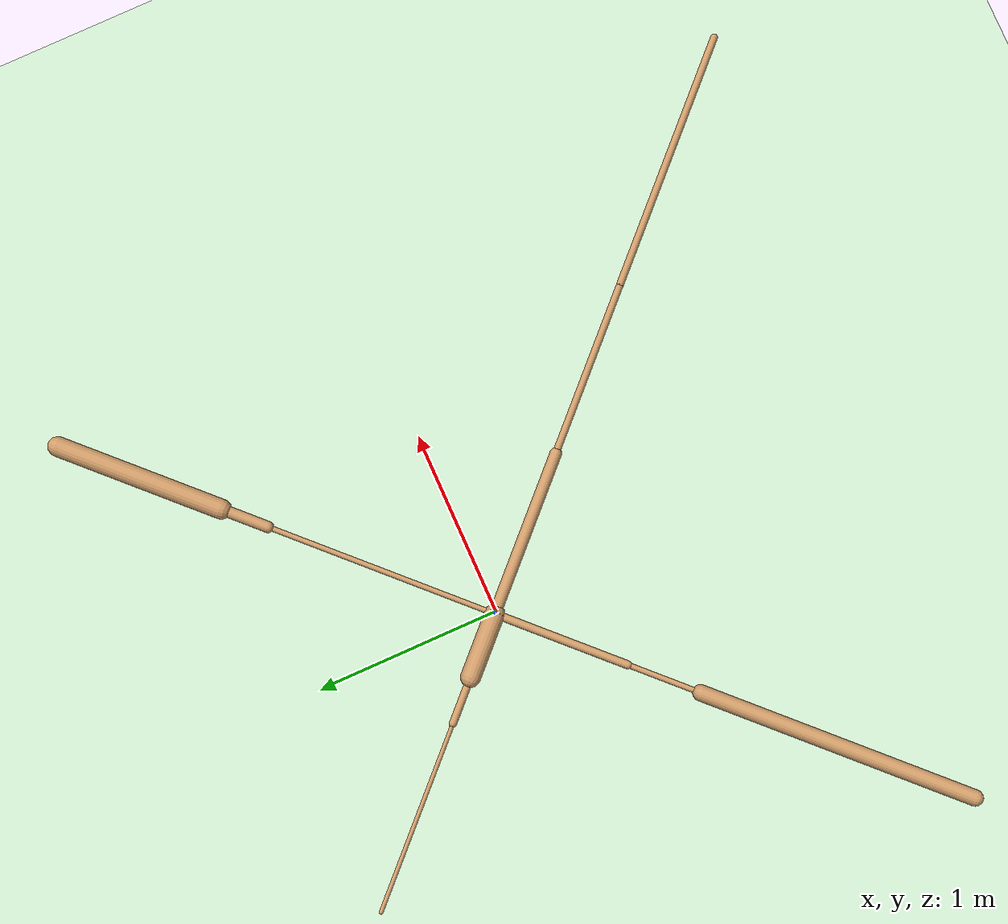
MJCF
<mujoco model="ant">
  <compiler angle="degree" coordinate="local" inertiafromgeom="true" />
  <option integrator="RK4" timestep="0.01" />
  <custom>
    <numeric data="0.0 0.0 0.55 1.0 0.0 0.0 0.0 0.0 1.0 0.0 -1.0 0.0 -1.0 0.0 1.0" name="init_qpos" />
  </custom>
  <default>
    <joint armature="1" damping="1" limited="true" />
    <geom conaffinity="0" condim="3" density="5.0" friction="1 0.5 0.5" margin="0.01" rgba="0.8 0.6 0.4 1" />
  </default>
  <asset>
    <texture builtin="gradient" height="100" rgb1="1 1 1" rgb2="0 0 0" type="skybox" width="100" />
    <texture builtin="flat" height="1278" mark="cross" markrgb="1 1 1" name="texgeom" random="0.01" rgb1="0.8 0.6 0.4" rgb2="0.8 0.6 0.4" type="cube" width="127" />
    <texture builtin="checker" height="100" name="texplane" rgb1="0 0 0" rgb2="0.8 0.8 0.8" type="2d" width="100" />
    <material name="MatPlane" reflectance="0.5" shininess="1" specular="1" texrepeat="60 60" texture="texplane" />
    <material name="geom" texture="texgeom" texuniform="true" />
  </asset>
  <worldbody>
    <light cutoff="100" diffuse="1 1 1" dir="-0 0 -1.3" directional="true" exponent="1" pos="0 0 1.3" specular=".1 .1 .1" />
    <geom conaffinity="1" condim="3" material="MatPlane" name="floor" pos="0 0 0" rgba="0.8 0.9 0.8 1" size="40 40 40" type="plane" />
    <body name="torso" pos="0 0 0.75">
      <camera name="track" mode="trackcom" pos="0 -11 5" xyaxes="1 0 0 0 0.5 1" />
      <geom name="torso_geom" pos="0 0 0" size="0.04806238412857056" type="sphere" />
      <joint armature="0" damping="0" limited="false" margin="0.01" name="root" pos="0 0 0" type="free" />
      <body name="front_left_leg" pos="0 0 0">
        <geom fromto="0 0 0 0.8224867582321167 0.8224867582321167 0" name="aux_1_geom" size="0.013106144964694977" type="capsule" />
        <body name="aux_1" pos="0.8224867582321167 0.8224867582321167 0">
          <joint axis="0 0 1" name="hip_1" pos="0.0 0.0 0.0" range="-30 30" type="hinge" />
          <geom fromto="0 0 0 0.16978150606155396 0.16978150606155396 0" name="left_leg_geom" size="0.02815042994916439" type="capsule" />
          <body name="left_leg_geom_aux" pos="0.16978150606155396 0.16978150606155396 0">
            <joint axis="-1 1 0" name="ankle_1" pos="0.0 0.0 0.0" range="30 70" type="hinge" />
            <geom fromto="0 0 0 0.5983090996742249 0.5983090996742249 0" name="left_ankle_geom" size="0.04953997954726219" type="capsule" />
          </body>
        </body>
      </body>
      <body name="front_right_leg" pos="0 0 0">
        <geom fromto="0 0 0 -0.22788172960281372 0.22788172960281372 0" name="aux_2_geom" size="0.049481336027383804" type="capsule" />
        <body name="aux_2" pos="-0.22788172960281372 0.22788172960281372 0">
          <joint axis="0 0 1" name="hip_2" pos="0.0 0.0 0.0" range="-30 30" type="hinge" />
          <geom fromto="0 0 0 -0.16476759314537048 0.16476759314537048 0" name="right_leg_geom" size="0.01893732324242592" type="capsule" />
          <body name="right_leg_geom_aux" pos="-0.16476759314537048 0.16476759314537048 0">
            <joint axis="1 1 0" name="ankle_2" pos="0.0 0.0 0.0" range="-70 -30" type="hinge" />
            <geom fromto="0 0 0 -0.6686140298843384 0.6686140298843384 0" name="right_ankle_geom" size="0.010366406291723251" type="capsule" />
          </body>
        </body>
      </body>
      <body name="back_leg" pos="0 0 0">
        <geom fromto="0 0 0 -0.48069560527801514 -0.48069560527801514 0" name="aux_3_geom" size="0.02034807577729225" type="capsule" />
        <body name="aux_3" pos="-0.48069560527801514 -0.48069560527801514 0">
          <joint axis="0 0 1" name="hip_3" pos="0.0 0.0 0.0" range="-30 30" type="hinge" />
          <geom fromto="0 0 0 -0.2620943784713745 -0.2620943784713745 0" name="back_leg_geom" size="0.013620213605463505" type="capsule" />
          <body name="back_leg_geom_aux" pos="-0.2620943784713745 -0.2620943784713745 0">
            <joint axis="-1 1 0" name="ankle_3" pos="0.0 0.0 0.0" range="-70 -30" type="hinge" />
            <geom fromto="0 0 0 -0.981827974319458 -0.981827974319458 0" name="third_ankle_geom" size="0.040137726813554764" type="capsule" />
          </body>
        </body>
      </body>
      <body name="right_back_leg" pos="0 0 0">
        <geom fromto="0 0 0 0.5811075568199158 -0.5811075568199158 0" name="aux_4_geom" size="0.029513893648982048" type="capsule" />
        <body name="aux_4" pos="0.5811075568199158 -0.5811075568199158 0">
          <joint axis="0 0 1" name="hip_4" pos="0.0 0.0 0.0" range="-30 30" type="hinge" />
          <geom fromto="0 0 0 0.6198022961616516 -0.6198022961616516 0" name="rightback_leg_geom" size="0.01772460900247097" type="capsule" />
          <body name="rightback_leg_geom_aux" pos="0.6198022961616516 -0.6198022961616516 0">
            <joint axis="1 1 0" name="ankle_4" pos="0.0 0.0 0.0" range="30 70" type="hinge" />
            <geom fromto="0 0 0 0.9244824051856995 -0.9244824051856995 0" name="fourth_ankle_geom" size="0.01823941245675087" type="capsule" />
          </body>
        </body>
      </body>
    </body>
  </worldbody>
  <actuator>
    <motor ctrllimited="true" ctrlrange="-1.0 1.0" joint="hip_4" gear="150" />
    <motor ctrllimited="true" ctrlrange="-1.0 1.0" joint="ankle_4" gear="150" />
    <motor ctrllimited="true" ctrlrange="-1.0 1.0" joint="hip_1" gear="150" />
    <motor ctrllimited="true" ctrlrange="-1.0 1.0" joint="ankle_1" gear="150" />
    <motor ctrllimited="true" ctrlrange="-1.0 1.0" joint="hip_2" gear="150" />
    <motor ctrllimited="true" ctrlrange="-1.0 1.0" joint="ankle_2" gear="150" />
    <motor ctrllimited="true" ctrlrange="-1.0 1.0" joint="hip_3" gear="150" />
    <motor ctrllimited="true" ctrlrange="-1.0 1.0" joint="ankle_3" gear="150" />
  </actuator>
</mujoco>
